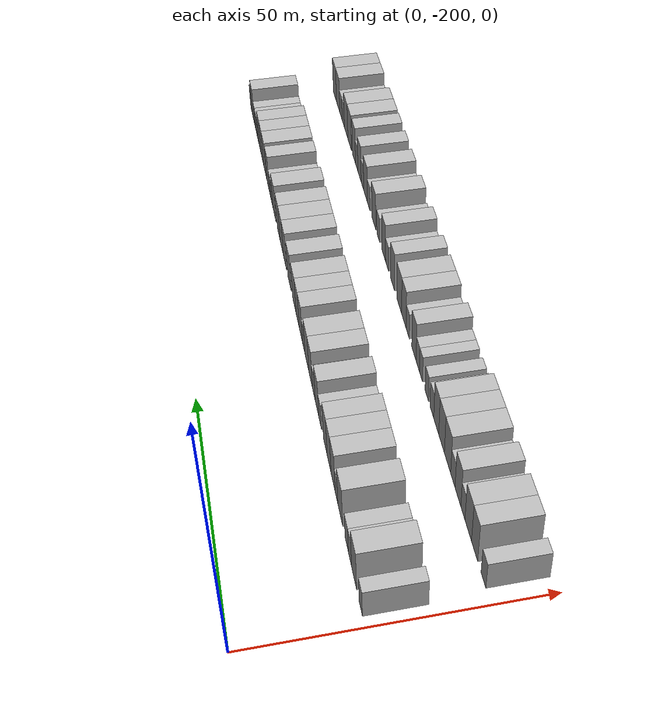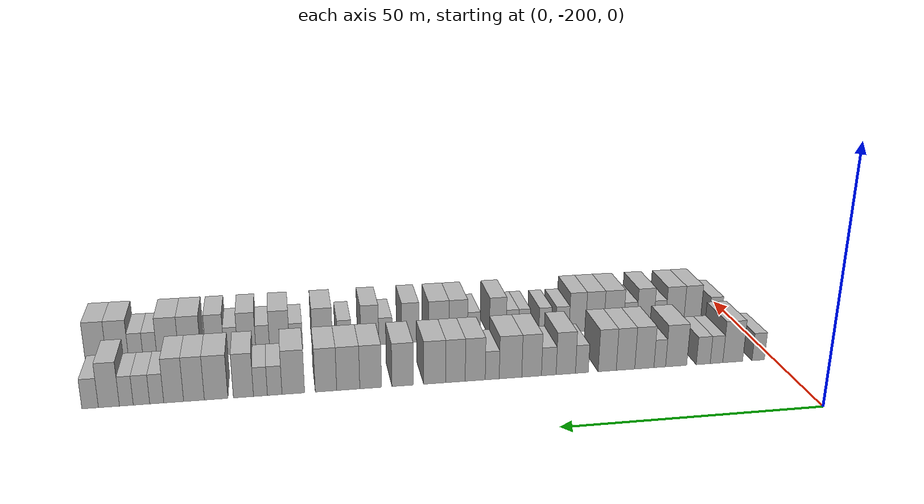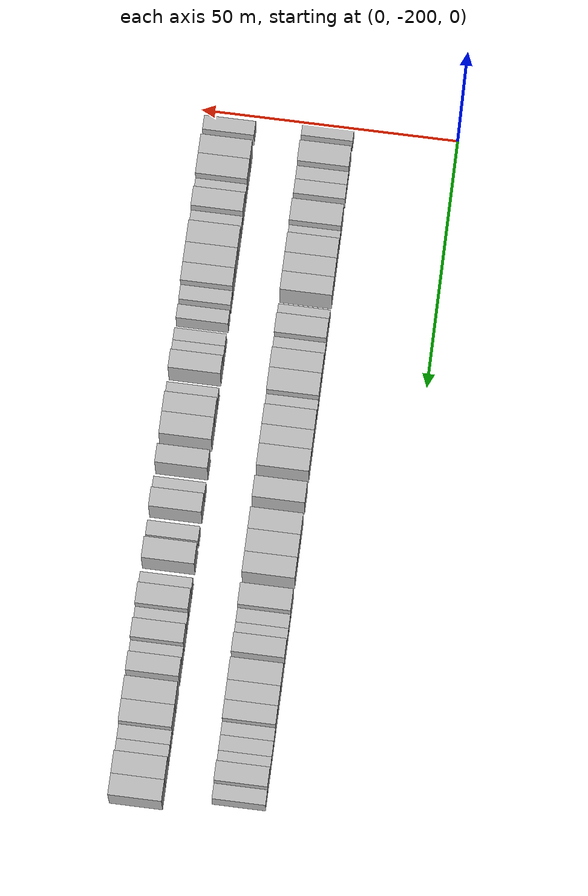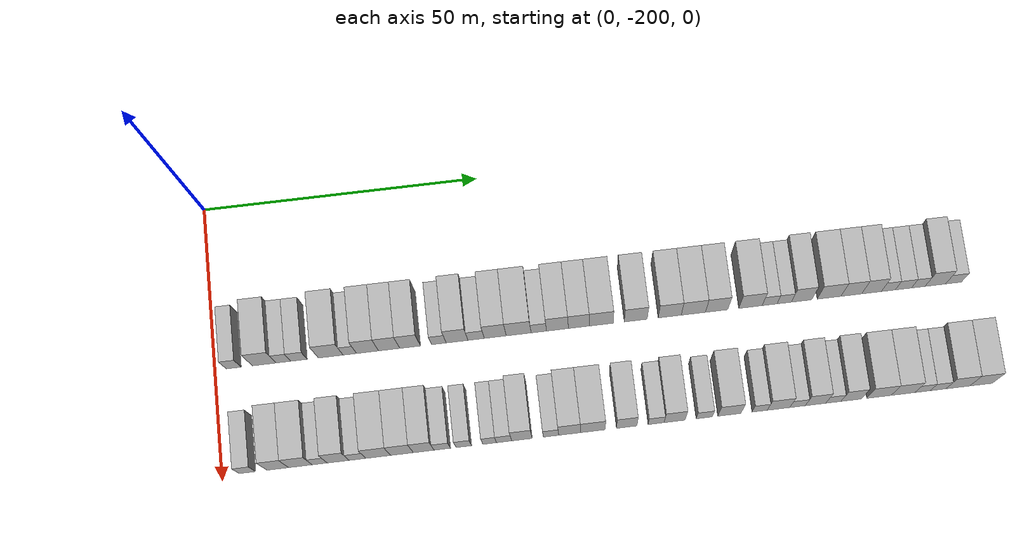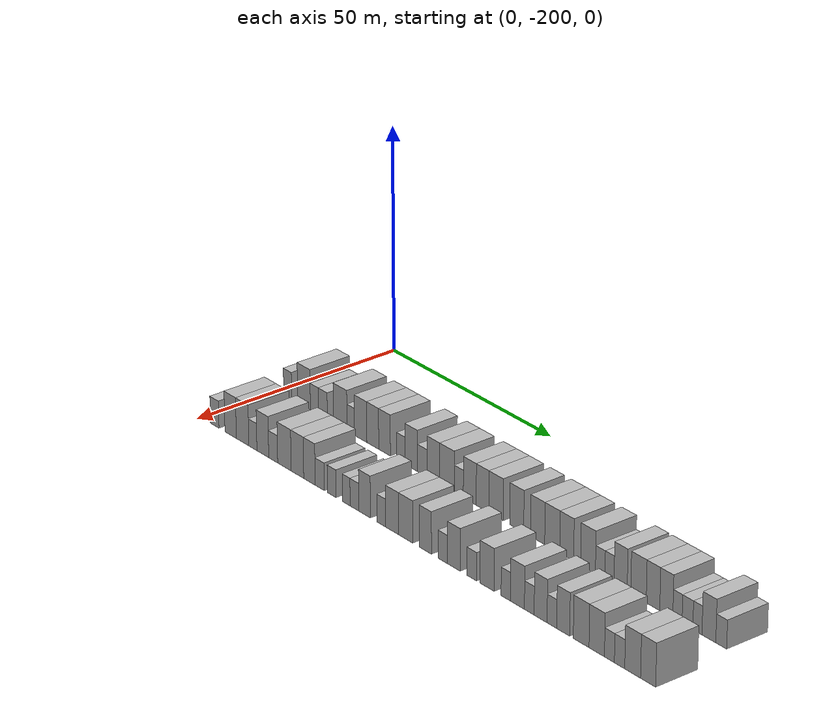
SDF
<sdf version="1.6">
 <world name="default">
  <model name="building_1">
   <static>1</static>
   <pose>25.0000 -196.6738 0 0.000000 0.000000 0.000000</pose>
   <link name="link">
    <pose>0 0 3.00 0 0 0</pose>
    <collision name="collision"><geometry><box><size>10.0000 2.6524 6.0000</size></box></geometry></collision>
    <visual name="visual">
     <cast_shadows>0</cast_shadows>
     <geometry><box><size>10.0000 2.6524 6.0000</size></box></geometry>
     <material>
      <script>
       <uri>model://HANNAS_wall/materials/scripts</uri>
       <uri>model://HANNAS_wall/materials/textures</uri>
       <name>vrc/HANNAS_wall</name>
      </script>
     </material>
    </visual>
   </link>
  </model>
  <model name="building_2">
   <static>1</static>
   <pose>25.0000 -191.2391 0 0.000000 0.000000 0.000000</pose>
   <link name="link">
    <pose>0 0 4.50 0 0 0</pose>
    <collision name="collision"><geometry><box><size>10.0000 4.2170 9.0000</size></box></geometry></collision>
    <visual name="visual">
     <cast_shadows>0</cast_shadows>
     <geometry><box><size>10.0000 4.2170 9.0000</size></box></geometry>
     <material>
      <script>
       <uri>model://HANNAS_wall/materials/scripts</uri>
       <uri>model://HANNAS_wall/materials/textures</uri>
       <name>vrc/HANNAS_wall</name>
      </script>
     </material>
    </visual>
   </link>
  </model>
  <model name="building_3">
   <static>1</static>
   <pose>25.0000 -187.8064 0 0.000000 0.000000 0.000000</pose>
   <link name="link">
    <pose>0 0 3.00 0 0 0</pose>
    <collision name="collision"><geometry><box><size>10.0000 2.6485 6.0000</size></box></geometry></collision>
    <visual name="visual">
     <cast_shadows>0</cast_shadows>
     <geometry><box><size>10.0000 2.6485 6.0000</size></box></geometry>
     <material>
      <script>
       <uri>model://HANNAS_wall/materials/scripts</uri>
       <uri>model://HANNAS_wall/materials/textures</uri>
       <name>vrc/HANNAS_wall</name>
      </script>
     </material>
    </visual>
   </link>
  </model>
  <model name="building_4">
   <static>1</static>
   <pose>25.0000 -185.0159 0 0.000000 0.000000 0.000000</pose>
   <link name="link">
    <pose>0 0 3.00 0 0 0</pose>
    <collision name="collision"><geometry><box><size>10.0000 2.9325 6.0000</size></box></geometry></collision>
    <visual name="visual">
     <cast_shadows>0</cast_shadows>
     <geometry><box><size>10.0000 2.9325 6.0000</size></box></geometry>
     <material>
      <script>
       <uri>model://HANNAS_wall/materials/scripts</uri>
       <uri>model://HANNAS_wall/materials/textures</uri>
       <name>vrc/HANNAS_wall</name>
      </script>
     </material>
    </visual>
   </link>
  </model>
  <model name="building_5">
   <static>1</static>
   <pose>25.0000 -179.3387 0 0.000000 0.000000 0.000000</pose>
   <link name="link">
    <pose>0 0 4.50 0 0 0</pose>
    <collision name="collision"><geometry><box><size>10.0000 4.4220 9.0000</size></box></geometry></collision>
    <visual name="visual">
     <cast_shadows>0</cast_shadows>
     <geometry><box><size>10.0000 4.4220 9.0000</size></box></geometry>
     <material>
      <script>
       <uri>model://HANNAS_wall/materials/scripts</uri>
       <uri>model://HANNAS_wall/materials/textures</uri>
       <name>vrc/HANNAS_wall</name>
      </script>
     </material>
    </visual>
   </link>
  </model>
  <model name="building_6">
   <static>1</static>
   <pose>25.0000 -175.9205 0 0.000000 0.000000 0.000000</pose>
   <link name="link">
    <pose>0 0 3.00 0 0 0</pose>
    <collision name="collision"><geometry><box><size>10.0000 2.4143 6.0000</size></box></geometry></collision>
    <visual name="visual">
     <cast_shadows>0</cast_shadows>
     <geometry><box><size>10.0000 2.4143 6.0000</size></box></geometry>
     <material>
      <script>
       <uri>model://HANNAS_wall/materials/scripts</uri>
       <uri>model://HANNAS_wall/materials/textures</uri>
       <name>vrc/HANNAS_wall</name>
      </script>
     </material>
    </visual>
   </link>
  </model>
  <model name="building_7">
   <static>1</static>
   <pose>25.0000 -172.7269 0 0.000000 0.000000 0.000000</pose>
   <link name="link">
    <pose>0 0 4.50 0 0 0</pose>
    <collision name="collision"><geometry><box><size>10.0000 3.9730 9.0000</size></box></geometry></collision>
    <visual name="visual">
     <cast_shadows>0</cast_shadows>
     <geometry><box><size>10.0000 3.9730 9.0000</size></box></geometry>
     <material>
      <script>
       <uri>model://HANNAS_wall/materials/scripts</uri>
       <uri>model://HANNAS_wall/materials/textures</uri>
       <name>vrc/HANNAS_wall</name>
      </script>
     </material>
    </visual>
   </link>
  </model>
  <model name="building_8">
   <static>1</static>
   <pose>25.0000 -168.8402 0 0.000000 0.000000 0.000000</pose>
   <link name="link">
    <pose>0 0 4.50 0 0 0</pose>
    <collision name="collision"><geometry><box><size>10.0000 3.8005 9.0000</size></box></geometry></collision>
    <visual name="visual">
     <cast_shadows>0</cast_shadows>
     <geometry><box><size>10.0000 3.8005 9.0000</size></box></geometry>
     <material>
      <script>
       <uri>model://HANNAS_wall/materials/scripts</uri>
       <uri>model://HANNAS_wall/materials/textures</uri>
       <name>vrc/HANNAS_wall</name>
      </script>
     </material>
    </visual>
   </link>
  </model>
  <model name="building_9">
   <static>1</static>
   <pose>25.0000 -165.0869 0 0.000000 0.000000 0.000000</pose>
   <link name="link">
    <pose>0 0 4.50 0 0 0</pose>
    <collision name="collision"><geometry><box><size>10.0000 3.7061 9.0000</size></box></geometry></collision>
    <visual name="visual">
     <cast_shadows>0</cast_shadows>
     <geometry><box><size>10.0000 3.7061 9.0000</size></box></geometry>
     <material>
      <script>
       <uri>model://HANNAS_wall/materials/scripts</uri>
       <uri>model://HANNAS_wall/materials/textures</uri>
       <name>vrc/HANNAS_wall</name>
      </script>
     </material>
    </visual>
   </link>
  </model>
  <model name="building_10">
   <static>1</static>
   <pose>25.0000 -159.9245 0 0.000000 0.000000 0.000000</pose>
   <link name="link">
    <pose>0 0 3.00 0 0 0</pose>
    <collision name="collision"><geometry><box><size>10.0000 2.6185 6.0000</size></box></geometry></collision>
    <visual name="visual">
     <cast_shadows>0</cast_shadows>
     <geometry><box><size>10.0000 2.6185 6.0000</size></box></geometry>
     <material>
      <script>
       <uri>model://HANNAS_wall/materials/scripts</uri>
       <uri>model://HANNAS_wall/materials/textures</uri>
       <name>vrc/HANNAS_wall</name>
      </script>
     </material>
    </visual>
   </link>
  </model>
  <model name="building_11">
   <static>1</static>
   <pose>25.0000 -156.6583 0 0.000000 0.000000 0.000000</pose>
   <link name="link">
    <pose>0 0 4.50 0 0 0</pose>
    <collision name="collision"><geometry><box><size>10.0000 3.9140 9.0000</size></box></geometry></collision>
    <visual name="visual">
     <cast_shadows>0</cast_shadows>
     <geometry><box><size>10.0000 3.9140 9.0000</size></box></geometry>
     <material>
      <script>
       <uri>model://HANNAS_wall/materials/scripts</uri>
       <uri>model://HANNAS_wall/materials/textures</uri>
       <name>vrc/HANNAS_wall</name>
      </script>
     </material>
    </visual>
   </link>
  </model>
  <model name="building_12">
   <static>1</static>
   <pose>25.0000 -153.2270 0 0.000000 0.000000 0.000000</pose>
   <link name="link">
    <pose>0 0 3.00 0 0 0</pose>
    <collision name="collision"><geometry><box><size>10.0000 2.9485 6.0000</size></box></geometry></collision>
    <visual name="visual">
     <cast_shadows>0</cast_shadows>
     <geometry><box><size>10.0000 2.9485 6.0000</size></box></geometry>
     <material>
      <script>
       <uri>model://HANNAS_wall/materials/scripts</uri>
       <uri>model://HANNAS_wall/materials/textures</uri>
       <name>vrc/HANNAS_wall</name>
      </script>
     </material>
    </visual>
   </link>
  </model>
  <model name="building_13">
   <static>1</static>
   <pose>25.0000 -149.7778 0 0.000000 0.000000 0.000000</pose>
   <link name="link">
    <pose>0 0 4.50 0 0 0</pose>
    <collision name="collision"><geometry><box><size>10.0000 3.9499 9.0000</size></box></geometry></collision>
    <visual name="visual">
     <cast_shadows>0</cast_shadows>
     <geometry><box><size>10.0000 3.9499 9.0000</size></box></geometry>
     <material>
      <script>
       <uri>model://HANNAS_wall/materials/scripts</uri>
       <uri>model://HANNAS_wall/materials/textures</uri>
       <name>vrc/HANNAS_wall</name>
      </script>
     </material>
    </visual>
   </link>
  </model>
  <model name="building_14">
   <static>1</static>
   <pose>25.0000 -145.5605 0 0.000000 0.000000 0.000000</pose>
   <link name="link">
    <pose>0 0 4.50 0 0 0</pose>
    <collision name="collision"><geometry><box><size>10.0000 4.4847 9.0000</size></box></geometry></collision>
    <visual name="visual">
     <cast_shadows>0</cast_shadows>
     <geometry><box><size>10.0000 4.4847 9.0000</size></box></geometry>
     <material>
      <script>
       <uri>model://HANNAS_wall/materials/scripts</uri>
       <uri>model://HANNAS_wall/materials/textures</uri>
       <name>vrc/HANNAS_wall</name>
      </script>
     </material>
    </visual>
   </link>
  </model>
  <model name="building_15">
   <static>1</static>
   <pose>25.0000 -141.9328 0 0.000000 0.000000 0.000000</pose>
   <link name="link">
    <pose>0 0 3.00 0 0 0</pose>
    <collision name="collision"><geometry><box><size>10.0000 2.7708 6.0000</size></box></geometry></collision>
    <visual name="visual">
     <cast_shadows>0</cast_shadows>
     <geometry><box><size>10.0000 2.7708 6.0000</size></box></geometry>
     <material>
      <script>
       <uri>model://HANNAS_wall/materials/scripts</uri>
       <uri>model://HANNAS_wall/materials/textures</uri>
       <name>vrc/HANNAS_wall</name>
      </script>
     </material>
    </visual>
   </link>
  </model>
  <model name="building_16">
   <static>1</static>
   <pose>25.0000 -138.5740 0 0.000000 0.000000 0.000000</pose>
   <link name="link">
    <pose>0 0 4.50 0 0 0</pose>
    <collision name="collision"><geometry><box><size>10.0000 3.9467 9.0000</size></box></geometry></collision>
    <visual name="visual">
     <cast_shadows>0</cast_shadows>
     <geometry><box><size>10.0000 3.9467 9.0000</size></box></geometry>
     <material>
      <script>
       <uri>model://HANNAS_wall/materials/scripts</uri>
       <uri>model://HANNAS_wall/materials/textures</uri>
       <name>vrc/HANNAS_wall</name>
      </script>
     </material>
    </visual>
   </link>
  </model>
  <model name="building_17">
   <static>1</static>
   <pose>25.0000 -134.7032 0 0.000000 0.000000 0.000000</pose>
   <link name="link">
    <pose>0 0 4.50 0 0 0</pose>
    <collision name="collision"><geometry><box><size>10.0000 3.7951 9.0000</size></box></geometry></collision>
    <visual name="visual">
     <cast_shadows>0</cast_shadows>
     <geometry><box><size>10.0000 3.7951 9.0000</size></box></geometry>
     <material>
      <script>
       <uri>model://HANNAS_wall/materials/scripts</uri>
       <uri>model://HANNAS_wall/materials/textures</uri>
       <name>vrc/HANNAS_wall</name>
      </script>
     </material>
    </visual>
   </link>
  </model>
  <model name="building_18">
   <static>1</static>
   <pose>25.0000 -130.6497 0 0.000000 0.000000 0.000000</pose>
   <link name="link">
    <pose>0 0 4.50 0 0 0</pose>
    <collision name="collision"><geometry><box><size>10.0000 4.3119 9.0000</size></box></geometry></collision>
    <visual name="visual">
     <cast_shadows>0</cast_shadows>
     <geometry><box><size>10.0000 4.3119 9.0000</size></box></geometry>
     <material>
      <script>
       <uri>model://HANNAS_wall/materials/scripts</uri>
       <uri>model://HANNAS_wall/materials/textures</uri>
       <name>vrc/HANNAS_wall</name>
      </script>
     </material>
    </visual>
   </link>
  </model>
  <model name="building_19">
   <static>1</static>
   <pose>25.0000 -124.4272 0 0.000000 0.000000 0.000000</pose>
   <link name="link">
    <pose>0 0 4.50 0 0 0</pose>
    <collision name="collision"><geometry><box><size>10.0000 4.1331 9.0000</size></box></geometry></collision>
    <visual name="visual">
     <cast_shadows>0</cast_shadows>
     <geometry><box><size>10.0000 4.1331 9.0000</size></box></geometry>
     <material>
      <script>
       <uri>model://HANNAS_wall/materials/scripts</uri>
       <uri>model://HANNAS_wall/materials/textures</uri>
       <name>vrc/HANNAS_wall</name>
      </script>
     </material>
    </visual>
   </link>
  </model>
  <model name="building_20">
   <static>1</static>
   <pose>25.0000 -118.2726 0 0.000000 0.000000 0.000000</pose>
   <link name="link">
    <pose>0 0 4.50 0 0 0</pose>
    <collision name="collision"><geometry><box><size>10.0000 4.1760 9.0000</size></box></geometry></collision>
    <visual name="visual">
     <cast_shadows>0</cast_shadows>
     <geometry><box><size>10.0000 4.1760 9.0000</size></box></geometry>
     <material>
      <script>
       <uri>model://HANNAS_wall/materials/scripts</uri>
       <uri>model://HANNAS_wall/materials/textures</uri>
       <name>vrc/HANNAS_wall</name>
      </script>
     </material>
    </visual>
   </link>
  </model>
  <model name="building_21">
   <static>1</static>
   <pose>25.0000 -113.9868 0 0.000000 0.000000 0.000000</pose>
   <link name="link">
    <pose>0 0 4.50 0 0 0</pose>
    <collision name="collision"><geometry><box><size>10.0000 4.3957 9.0000</size></box></geometry></collision>
    <visual name="visual">
     <cast_shadows>0</cast_shadows>
     <geometry><box><size>10.0000 4.3957 9.0000</size></box></geometry>
     <material>
      <script>
       <uri>model://HANNAS_wall/materials/scripts</uri>
       <uri>model://HANNAS_wall/materials/textures</uri>
       <name>vrc/HANNAS_wall</name>
      </script>
     </material>
    </visual>
   </link>
  </model>
  <model name="building_22">
   <static>1</static>
   <pose>25.0000 -109.7643 0 0.000000 0.000000 0.000000</pose>
   <link name="link">
    <pose>0 0 4.50 0 0 0</pose>
    <collision name="collision"><geometry><box><size>10.0000 4.0492 9.0000</size></box></geometry></collision>
    <visual name="visual">
     <cast_shadows>0</cast_shadows>
     <geometry><box><size>10.0000 4.0492 9.0000</size></box></geometry>
     <material>
      <script>
       <uri>model://HANNAS_wall/materials/scripts</uri>
       <uri>model://HANNAS_wall/materials/textures</uri>
       <name>vrc/HANNAS_wall</name>
      </script>
     </material>
    </visual>
   </link>
  </model>
  <model name="building_23">
   <static>1</static>
   <pose>25.0000 -103.6163 0 0.000000 0.000000 0.000000</pose>
   <link name="link">
    <pose>0 0 4.50 0 0 0</pose>
    <collision name="collision"><geometry><box><size>10.0000 4.2467 9.0000</size></box></geometry></collision>
    <visual name="visual">
     <cast_shadows>0</cast_shadows>
     <geometry><box><size>10.0000 4.2467 9.0000</size></box></geometry>
     <material>
      <script>
       <uri>model://HANNAS_wall/materials/scripts</uri>
       <uri>model://HANNAS_wall/materials/textures</uri>
       <name>vrc/HANNAS_wall</name>
      </script>
     </material>
    </visual>
   </link>
  </model>
  <model name="building_24">
   <static>1</static>
   <pose>25.0000 -100.1318 0 0.000000 0.000000 0.000000</pose>
   <link name="link">
    <pose>0 0 3.00 0 0 0</pose>
    <collision name="collision"><geometry><box><size>10.0000 2.7223 6.0000</size></box></geometry></collision>
    <visual name="visual">
     <cast_shadows>0</cast_shadows>
     <geometry><box><size>10.0000 2.7223 6.0000</size></box></geometry>
     <material>
      <script>
       <uri>model://HANNAS_wall/materials/scripts</uri>
       <uri>model://HANNAS_wall/materials/textures</uri>
       <name>vrc/HANNAS_wall</name>
      </script>
     </material>
    </visual>
   </link>
  </model>
  <model name="building_25">
   <static>1</static>
   <pose>25.0000 -97.4797 0 0.000000 0.000000 0.000000</pose>
   <link name="link">
    <pose>0 0 3.00 0 0 0</pose>
    <collision name="collision"><geometry><box><size>10.0000 2.5819 6.0000</size></box></geometry></collision>
    <visual name="visual">
     <cast_shadows>0</cast_shadows>
     <geometry><box><size>10.0000 2.5819 6.0000</size></box></geometry>
     <material>
      <script>
       <uri>model://HANNAS_wall/materials/scripts</uri>
       <uri>model://HANNAS_wall/materials/textures</uri>
       <name>vrc/HANNAS_wall</name>
      </script>
     </material>
    </visual>
   </link>
  </model>
  <model name="building_26">
   <static>1</static>
   <pose>25.0000 -94.3275 0 0.000000 0.000000 0.000000</pose>
   <link name="link">
    <pose>0 0 4.50 0 0 0</pose>
    <collision name="collision"><geometry><box><size>10.0000 3.7225 9.0000</size></box></geometry></collision>
    <visual name="visual">
     <cast_shadows>0</cast_shadows>
     <geometry><box><size>10.0000 3.7225 9.0000</size></box></geometry>
     <material>
      <script>
       <uri>model://HANNAS_wall/materials/scripts</uri>
       <uri>model://HANNAS_wall/materials/textures</uri>
       <name>vrc/HANNAS_wall</name>
      </script>
     </material>
    </visual>
   </link>
  </model>
  <model name="building_27">
   <static>1</static>
   <pose>25.0000 -89.3020 0 0.000000 0.000000 0.000000</pose>
   <link name="link">
    <pose>0 0 4.50 0 0 0</pose>
    <collision name="collision"><geometry><box><size>10.0000 4.3286 9.0000</size></box></geometry></collision>
    <visual name="visual">
     <cast_shadows>0</cast_shadows>
     <geometry><box><size>10.0000 4.3286 9.0000</size></box></geometry>
     <material>
      <script>
       <uri>model://HANNAS_wall/materials/scripts</uri>
       <uri>model://HANNAS_wall/materials/textures</uri>
       <name>vrc/HANNAS_wall</name>
      </script>
     </material>
    </visual>
   </link>
  </model>
  <model name="building_28">
   <static>1</static>
   <pose>25.0000 -85.2494 0 0.000000 0.000000 0.000000</pose>
   <link name="link">
    <pose>0 0 4.50 0 0 0</pose>
    <collision name="collision"><geometry><box><size>10.0000 3.7765 9.0000</size></box></geometry></collision>
    <visual name="visual">
     <cast_shadows>0</cast_shadows>
     <geometry><box><size>10.0000 3.7765 9.0000</size></box></geometry>
     <material>
      <script>
       <uri>model://HANNAS_wall/materials/scripts</uri>
       <uri>model://HANNAS_wall/materials/textures</uri>
       <name>vrc/HANNAS_wall</name>
      </script>
     </material>
    </visual>
   </link>
  </model>
  <model name="building_29">
   <static>1</static>
   <pose>25.0000 -81.5595 0 0.000000 0.000000 0.000000</pose>
   <link name="link">
    <pose>0 0 4.50 0 0 0</pose>
    <collision name="collision"><geometry><box><size>10.0000 3.6033 9.0000</size></box></geometry></collision>
    <visual name="visual">
     <cast_shadows>0</cast_shadows>
     <geometry><box><size>10.0000 3.6033 9.0000</size></box></geometry>
     <material>
      <script>
       <uri>model://HANNAS_wall/materials/scripts</uri>
       <uri>model://HANNAS_wall/materials/textures</uri>
       <name>vrc/HANNAS_wall</name>
      </script>
     </material>
    </visual>
   </link>
  </model>
  <model name="building_30">
   <static>1</static>
   <pose>25.0000 -78.4887 0 0.000000 0.000000 0.000000</pose>
   <link name="link">
    <pose>0 0 3.00 0 0 0</pose>
    <collision name="collision"><geometry><box><size>10.0000 2.5384 6.0000</size></box></geometry></collision>
    <visual name="visual">
     <cast_shadows>0</cast_shadows>
     <geometry><box><size>10.0000 2.5384 6.0000</size></box></geometry>
     <material>
      <script>
       <uri>model://HANNAS_wall/materials/scripts</uri>
       <uri>model://HANNAS_wall/materials/textures</uri>
       <name>vrc/HANNAS_wall</name>
      </script>
     </material>
    </visual>
   </link>
  </model>
  <model name="building_31">
   <static>1</static>
   <pose>25.0000 -75.7399 0 0.000000 0.000000 0.000000</pose>
   <link name="link">
    <pose>0 0 3.00 0 0 0</pose>
    <collision name="collision"><geometry><box><size>10.0000 2.9591 6.0000</size></box></geometry></collision>
    <visual name="visual">
     <cast_shadows>0</cast_shadows>
     <geometry><box><size>10.0000 2.9591 6.0000</size></box></geometry>
     <material>
      <script>
       <uri>model://HANNAS_wall/materials/scripts</uri>
       <uri>model://HANNAS_wall/materials/textures</uri>
       <name>vrc/HANNAS_wall</name>
      </script>
     </material>
    </visual>
   </link>
  </model>
  <model name="building_32">
   <static>1</static>
   <pose>25.0000 -73.0192 0 0.000000 0.000000 0.000000</pose>
   <link name="link">
    <pose>0 0 3.00 0 0 0</pose>
    <collision name="collision"><geometry><box><size>10.0000 2.4824 6.0000</size></box></geometry></collision>
    <visual name="visual">
     <cast_shadows>0</cast_shadows>
     <geometry><box><size>10.0000 2.4824 6.0000</size></box></geometry>
     <material>
      <script>
       <uri>model://HANNAS_wall/materials/scripts</uri>
       <uri>model://HANNAS_wall/materials/textures</uri>
       <name>vrc/HANNAS_wall</name>
      </script>
     </material>
    </visual>
   </link>
  </model>
  <model name="building_33">
   <static>1</static>
   <pose>25.0000 -69.9044 0 0.000000 0.000000 0.000000</pose>
   <link name="link">
    <pose>0 0 4.50 0 0 0</pose>
    <collision name="collision"><geometry><box><size>10.0000 3.7471 9.0000</size></box></geometry></collision>
    <visual name="visual">
     <cast_shadows>0</cast_shadows>
     <geometry><box><size>10.0000 3.7471 9.0000</size></box></geometry>
     <material>
      <script>
       <uri>model://HANNAS_wall/materials/scripts</uri>
       <uri>model://HANNAS_wall/materials/textures</uri>
       <name>vrc/HANNAS_wall</name>
      </script>
     </material>
    </visual>
   </link>
  </model>
  <model name="building_34">
   <static>1</static>
   <pose>25.0000 -66.5628 0 0.000000 0.000000 0.000000</pose>
   <link name="link">
    <pose>0 0 3.00 0 0 0</pose>
    <collision name="collision"><geometry><box><size>10.0000 2.9362 6.0000</size></box></geometry></collision>
    <visual name="visual">
     <cast_shadows>0</cast_shadows>
     <geometry><box><size>10.0000 2.9362 6.0000</size></box></geometry>
     <material>
      <script>
       <uri>model://HANNAS_wall/materials/scripts</uri>
       <uri>model://HANNAS_wall/materials/textures</uri>
       <name>vrc/HANNAS_wall</name>
      </script>
     </material>
    </visual>
   </link>
  </model>
  <model name="building_104">
   <static>1</static>
   <pose>44.0000 -195.5657 0 0.000000 0.000000 0.000000</pose>
   <link name="link">
    <pose>0 0 3.00 0 0 0</pose>
    <collision name="collision"><geometry><box><size>10.0000 2.8685 6.0000</size></box></geometry></collision>
    <visual name="visual">
     <cast_shadows>0</cast_shadows>
     <geometry><box><size>10.0000 2.8685 6.0000</size></box></geometry>
     <material>
      <script>
       <uri>model://HANNAS_wall/materials/scripts</uri>
       <uri>model://HANNAS_wall/materials/textures</uri>
       <name>vrc/HANNAS_wall</name>
      </script>
     </material>
    </visual>
   </link>
  </model>
  <model name="building_105">
   <static>1</static>
   <pose>44.0000 -190.2236 0 0.000000 0.000000 0.000000</pose>
   <link name="link">
    <pose>0 0 4.50 0 0 0</pose>
    <collision name="collision"><geometry><box><size>10.0000 3.8157 9.0000</size></box></geometry></collision>
    <visual name="visual">
     <cast_shadows>0</cast_shadows>
     <geometry><box><size>10.0000 3.8157 9.0000</size></box></geometry>
     <material>
      <script>
       <uri>model://HANNAS_wall/materials/scripts</uri>
       <uri>model://HANNAS_wall/materials/textures</uri>
       <name>vrc/HANNAS_wall</name>
      </script>
     </material>
    </visual>
   </link>
  </model>
  <model name="building_106">
   <static>1</static>
   <pose>44.0000 -186.2428 0 0.000000 0.000000 0.000000</pose>
   <link name="link">
    <pose>0 0 4.50 0 0 0</pose>
    <collision name="collision"><geometry><box><size>10.0000 4.1459 9.0000</size></box></geometry></collision>
    <visual name="visual">
     <cast_shadows>0</cast_shadows>
     <geometry><box><size>10.0000 4.1459 9.0000</size></box></geometry>
     <material>
      <script>
       <uri>model://HANNAS_wall/materials/scripts</uri>
       <uri>model://HANNAS_wall/materials/textures</uri>
       <name>vrc/HANNAS_wall</name>
      </script>
     </material>
    </visual>
   </link>
  </model>
  <model name="building_107">
   <static>1</static>
   <pose>44.0000 -182.8457 0 0.000000 0.000000 0.000000</pose>
   <link name="link">
    <pose>0 0 3.00 0 0 0</pose>
    <collision name="collision"><geometry><box><size>10.0000 2.6484 6.0000</size></box></geometry></collision>
    <visual name="visual">
     <cast_shadows>0</cast_shadows>
     <geometry><box><size>10.0000 2.6484 6.0000</size></box></geometry>
     <material>
      <script>
       <uri>model://HANNAS_wall/materials/scripts</uri>
       <uri>model://HANNAS_wall/materials/textures</uri>
       <name>vrc/HANNAS_wall</name>
      </script>
     </material>
    </visual>
   </link>
  </model>
  <model name="building_108">
   <static>1</static>
   <pose>44.0000 -179.5871 0 0.000000 0.000000 0.000000</pose>
   <link name="link">
    <pose>0 0 4.50 0 0 0</pose>
    <collision name="collision"><geometry><box><size>10.0000 3.8688 9.0000</size></box></geometry></collision>
    <visual name="visual">
     <cast_shadows>0</cast_shadows>
     <geometry><box><size>10.0000 3.8688 9.0000</size></box></geometry>
     <material>
      <script>
       <uri>model://HANNAS_wall/materials/scripts</uri>
       <uri>model://HANNAS_wall/materials/textures</uri>
       <name>vrc/HANNAS_wall</name>
      </script>
     </material>
    </visual>
   </link>
  </model>
  <model name="building_109">
   <static>1</static>
   <pose>44.0000 -176.1914 0 0.000000 0.000000 0.000000</pose>
   <link name="link">
    <pose>0 0 3.00 0 0 0</pose>
    <collision name="collision"><geometry><box><size>10.0000 2.9225 6.0000</size></box></geometry></collision>
    <visual name="visual">
     <cast_shadows>0</cast_shadows>
     <geometry><box><size>10.0000 2.9225 6.0000</size></box></geometry>
     <material>
      <script>
       <uri>model://HANNAS_wall/materials/scripts</uri>
       <uri>model://HANNAS_wall/materials/textures</uri>
       <name>vrc/HANNAS_wall</name>
      </script>
     </material>
    </visual>
   </link>
  </model>
  <model name="building_110">
   <static>1</static>
   <pose>44.0000 -172.5340 0 0.000000 0.000000 0.000000</pose>
   <link name="link">
    <pose>0 0 4.50 0 0 0</pose>
    <collision name="collision"><geometry><box><size>10.0000 4.3924 9.0000</size></box></geometry></collision>
    <visual name="visual">
     <cast_shadows>0</cast_shadows>
     <geometry><box><size>10.0000 4.3924 9.0000</size></box></geometry>
     <material>
      <script>
       <uri>model://HANNAS_wall/materials/scripts</uri>
       <uri>model://HANNAS_wall/materials/textures</uri>
       <name>vrc/HANNAS_wall</name>
      </script>
     </material>
    </visual>
   </link>
  </model>
  <model name="building_111">
   <static>1</static>
   <pose>44.0000 -168.3188 0 0.000000 0.000000 0.000000</pose>
   <link name="link">
    <pose>0 0 4.50 0 0 0</pose>
    <collision name="collision"><geometry><box><size>10.0000 4.0380 9.0000</size></box></geometry></collision>
    <visual name="visual">
     <cast_shadows>0</cast_shadows>
     <geometry><box><size>10.0000 4.0380 9.0000</size></box></geometry>
     <material>
      <script>
       <uri>model://HANNAS_wall/materials/scripts</uri>
       <uri>model://HANNAS_wall/materials/textures</uri>
       <name>vrc/HANNAS_wall</name>
      </script>
     </material>
    </visual>
   </link>
  </model>
  <model name="building_112">
   <static>1</static>
   <pose>44.0000 -164.4657 0 0.000000 0.000000 0.000000</pose>
   <link name="link">
    <pose>0 0 4.50 0 0 0</pose>
    <collision name="collision"><geometry><box><size>10.0000 3.6681 9.0000</size></box></geometry></collision>
    <visual name="visual">
     <cast_shadows>0</cast_shadows>
     <geometry><box><size>10.0000 3.6681 9.0000</size></box></geometry>
     <material>
      <script>
       <uri>model://HANNAS_wall/materials/scripts</uri>
       <uri>model://HANNAS_wall/materials/textures</uri>
       <name>vrc/HANNAS_wall</name>
      </script>
     </material>
    </visual>
   </link>
  </model>
  <model name="building_113">
   <static>1</static>
   <pose>44.0000 -161.1796 0 0.000000 0.000000 0.000000</pose>
   <link name="link">
    <pose>0 0 3.00 0 0 0</pose>
    <collision name="collision"><geometry><box><size>10.0000 2.9042 6.0000</size></box></geometry></collision>
    <visual name="visual">
     <cast_shadows>0</cast_shadows>
     <geometry><box><size>10.0000 2.9042 6.0000</size></box></geometry>
     <material>
      <script>
       <uri>model://HANNAS_wall/materials/scripts</uri>
       <uri>model://HANNAS_wall/materials/textures</uri>
       <name>vrc/HANNAS_wall</name>
      </script>
     </material>
    </visual>
   </link>
  </model>
  <model name="building_114">
   <static>1</static>
   <pose>44.0000 -157.3653 0 0.000000 0.000000 0.000000</pose>
   <link name="link">
    <pose>0 0 3.00 0 0 0</pose>
    <collision name="collision"><geometry><box><size>10.0000 2.7243 6.0000</size></box></geometry></collision>
    <visual name="visual">
     <cast_shadows>0</cast_shadows>
     <geometry><box><size>10.0000 2.7243 6.0000</size></box></geometry>
     <material>
      <script>
       <uri>model://HANNAS_wall/materials/scripts</uri>
       <uri>model://HANNAS_wall/materials/textures</uri>
       <name>vrc/HANNAS_wall</name>
      </script>
     </material>
    </visual>
   </link>
  </model>
  <model name="building_115">
   <static>1</static>
   <pose>44.0000 -152.7939 0 0.000000 0.000000 0.000000</pose>
   <link name="link">
    <pose>0 0 3.00 0 0 0</pose>
    <collision name="collision"><geometry><box><size>10.0000 2.4185 6.0000</size></box></geometry></collision>
    <visual name="visual">
     <cast_shadows>0</cast_shadows>
     <geometry><box><size>10.0000 2.4185 6.0000</size></box></geometry>
     <material>
      <script>
       <uri>model://HANNAS_wall/materials/scripts</uri>
       <uri>model://HANNAS_wall/materials/textures</uri>
       <name>vrc/HANNAS_wall</name>
      </script>
     </material>
    </visual>
   </link>
  </model>
  <model name="building_116">
   <static>1</static>
   <pose>44.0000 -150.2296 0 0.000000 0.000000 0.000000</pose>
   <link name="link">
    <pose>0 0 3.00 0 0 0</pose>
    <collision name="collision"><geometry><box><size>10.0000 2.7101 6.0000</size></box></geometry></collision>
    <visual name="visual">
     <cast_shadows>0</cast_shadows>
     <geometry><box><size>10.0000 2.7101 6.0000</size></box></geometry>
     <material>
      <script>
       <uri>model://HANNAS_wall/materials/scripts</uri>
       <uri>model://HANNAS_wall/materials/textures</uri>
       <name>vrc/HANNAS_wall</name>
      </script>
     </material>
    </visual>
   </link>
  </model>
  <model name="building_117">
   <static>1</static>
   <pose>44.0000 -147.0651 0 0.000000 0.000000 0.000000</pose>
   <link name="link">
    <pose>0 0 4.50 0 0 0</pose>
    <collision name="collision"><geometry><box><size>10.0000 3.6189 9.0000</size></box></geometry></collision>
    <visual name="visual">
     <cast_shadows>0</cast_shadows>
     <geometry><box><size>10.0000 3.6189 9.0000</size></box></geometry>
     <material>
      <script>
       <uri>model://HANNAS_wall/materials/scripts</uri>
       <uri>model://HANNAS_wall/materials/textures</uri>
       <name>vrc/HANNAS_wall</name>
      </script>
     </material>
    </visual>
   </link>
  </model>
  <model name="building_118">
   <static>1</static>
   <pose>44.0000 -141.9018 0 0.000000 0.000000 0.000000</pose>
   <link name="link">
    <pose>0 0 3.00 0 0 0</pose>
    <collision name="collision"><geometry><box><size>10.0000 2.7076 6.0000</size></box></geometry></collision>
    <visual name="visual">
     <cast_shadows>0</cast_shadows>
     <geometry><box><size>10.0000 2.7076 6.0000</size></box></geometry>
     <material>
      <script>
       <uri>model://HANNAS_wall/materials/scripts</uri>
       <uri>model://HANNAS_wall/materials/textures</uri>
       <name>vrc/HANNAS_wall</name>
      </script>
     </material>
    </visual>
   </link>
  </model>
  <model name="building_119">
   <static>1</static>
   <pose>44.0000 -138.5949 0 0.000000 0.000000 0.000000</pose>
   <link name="link">
    <pose>0 0 4.50 0 0 0</pose>
    <collision name="collision"><geometry><box><size>10.0000 3.9060 9.0000</size></box></geometry></collision>
    <visual name="visual">
     <cast_shadows>0</cast_shadows>
     <geometry><box><size>10.0000 3.9060 9.0000</size></box></geometry>
     <material>
      <script>
       <uri>model://HANNAS_wall/materials/scripts</uri>
       <uri>model://HANNAS_wall/materials/textures</uri>
       <name>vrc/HANNAS_wall</name>
      </script>
     </material>
    </visual>
   </link>
  </model>
  <model name="building_120">
   <static>1</static>
   <pose>44.0000 -134.4544 0 0.000000 0.000000 0.000000</pose>
   <link name="link">
    <pose>0 0 4.50 0 0 0</pose>
    <collision name="collision"><geometry><box><size>10.0000 4.3750 9.0000</size></box></geometry></collision>
    <visual name="visual">
     <cast_shadows>0</cast_shadows>
     <geometry><box><size>10.0000 4.3750 9.0000</size></box></geometry>
     <material>
      <script>
       <uri>model://HANNAS_wall/materials/scripts</uri>
       <uri>model://HANNAS_wall/materials/textures</uri>
       <name>vrc/HANNAS_wall</name>
      </script>
     </material>
    </visual>
   </link>
  </model>
  <model name="building_121">
   <static>1</static>
   <pose>44.0000 -128.4509 0 0.000000 0.000000 0.000000</pose>
   <link name="link">
    <pose>0 0 4.50 0 0 0</pose>
    <collision name="collision"><geometry><box><size>10.0000 3.6321 9.0000</size></box></geometry></collision>
    <visual name="visual">
     <cast_shadows>0</cast_shadows>
     <geometry><box><size>10.0000 3.6321 9.0000</size></box></geometry>
     <material>
      <script>
       <uri>model://HANNAS_wall/materials/scripts</uri>
       <uri>model://HANNAS_wall/materials/textures</uri>
       <name>vrc/HANNAS_wall</name>
      </script>
     </material>
    </visual>
   </link>
  </model>
  <model name="building_122">
   <static>1</static>
   <pose>44.0000 -123.2103 0 0.000000 0.000000 0.000000</pose>
   <link name="link">
    <pose>0 0 3.00 0 0 0</pose>
    <collision name="collision"><geometry><box><size>10.0000 2.8491 6.0000</size></box></geometry></collision>
    <visual name="visual">
     <cast_shadows>0</cast_shadows>
     <geometry><box><size>10.0000 2.8491 6.0000</size></box></geometry>
     <material>
      <script>
       <uri>model://HANNAS_wall/materials/scripts</uri>
       <uri>model://HANNAS_wall/materials/textures</uri>
       <name>vrc/HANNAS_wall</name>
      </script>
     </material>
    </visual>
   </link>
  </model>
  <model name="building_123">
   <static>1</static>
   <pose>44.0000 -119.9262 0 0.000000 0.000000 0.000000</pose>
   <link name="link">
    <pose>0 0 4.50 0 0 0</pose>
    <collision name="collision"><geometry><box><size>10.0000 3.7190 9.0000</size></box></geometry></collision>
    <visual name="visual">
     <cast_shadows>0</cast_shadows>
     <geometry><box><size>10.0000 3.7190 9.0000</size></box></geometry>
     <material>
      <script>
       <uri>model://HANNAS_wall/materials/scripts</uri>
       <uri>model://HANNAS_wall/materials/textures</uri>
       <name>vrc/HANNAS_wall</name>
      </script>
     </material>
    </visual>
   </link>
  </model>
  <model name="building_124">
   <static>1</static>
   <pose>44.0000 -114.6321 0 0.000000 0.000000 0.000000</pose>
   <link name="link">
    <pose>0 0 3.00 0 0 0</pose>
    <collision name="collision"><geometry><box><size>10.0000 2.8691 6.0000</size></box></geometry></collision>
    <visual name="visual">
     <cast_shadows>0</cast_shadows>
     <geometry><box><size>10.0000 2.8691 6.0000</size></box></geometry>
     <material>
      <script>
       <uri>model://HANNAS_wall/materials/scripts</uri>
       <uri>model://HANNAS_wall/materials/textures</uri>
       <name>vrc/HANNAS_wall</name>
      </script>
     </material>
    </visual>
   </link>
  </model>
  <model name="building_125">
   <static>1</static>
   <pose>44.0000 -110.1346 0 0.000000 0.000000 0.000000</pose>
   <link name="link">
    <pose>0 0 4.50 0 0 0</pose>
    <collision name="collision"><geometry><box><size>10.0000 4.1259 9.0000</size></box></geometry></collision>
    <visual name="visual">
     <cast_shadows>0</cast_shadows>
     <geometry><box><size>10.0000 4.1259 9.0000</size></box></geometry>
     <material>
      <script>
       <uri>model://HANNAS_wall/materials/scripts</uri>
       <uri>model://HANNAS_wall/materials/textures</uri>
       <name>vrc/HANNAS_wall</name>
      </script>
     </material>
    </visual>
   </link>
  </model>
  <model name="building_126">
   <static>1</static>
   <pose>44.0000 -104.7179 0 0.000000 0.000000 0.000000</pose>
   <link name="link">
    <pose>0 0 3.00 0 0 0</pose>
    <collision name="collision"><geometry><box><size>10.0000 2.7076 6.0000</size></box></geometry></collision>
    <visual name="visual">
     <cast_shadows>0</cast_shadows>
     <geometry><box><size>10.0000 2.7076 6.0000</size></box></geometry>
     <material>
      <script>
       <uri>model://HANNAS_wall/materials/scripts</uri>
       <uri>model://HANNAS_wall/materials/textures</uri>
       <name>vrc/HANNAS_wall</name>
      </script>
     </material>
    </visual>
   </link>
  </model>
  <model name="building_127">
   <static>1</static>
   <pose>44.0000 -101.3440 0 0.000000 0.000000 0.000000</pose>
   <link name="link">
    <pose>0 0 4.50 0 0 0</pose>
    <collision name="collision"><geometry><box><size>10.0000 4.0403 9.0000</size></box></geometry></collision>
    <visual name="visual">
     <cast_shadows>0</cast_shadows>
     <geometry><box><size>10.0000 4.0403 9.0000</size></box></geometry>
     <material>
      <script>
       <uri>model://HANNAS_wall/materials/scripts</uri>
       <uri>model://HANNAS_wall/materials/textures</uri>
       <name>vrc/HANNAS_wall</name>
      </script>
     </material>
    </visual>
   </link>
  </model>
  <model name="building_128">
   <static>1</static>
   <pose>44.0000 -97.9350 0 0.000000 0.000000 0.000000</pose>
   <link name="link">
    <pose>0 0 3.00 0 0 0</pose>
    <collision name="collision"><geometry><box><size>10.0000 2.7778 6.0000</size></box></geometry></collision>
    <visual name="visual">
     <cast_shadows>0</cast_shadows>
     <geometry><box><size>10.0000 2.7778 6.0000</size></box></geometry>
     <material>
      <script>
       <uri>model://HANNAS_wall/materials/scripts</uri>
       <uri>model://HANNAS_wall/materials/textures</uri>
       <name>vrc/HANNAS_wall</name>
      </script>
     </material>
    </visual>
   </link>
  </model>
  <model name="building_129">
   <static>1</static>
   <pose>44.0000 -94.7017 0 0.000000 0.000000 0.000000</pose>
   <link name="link">
    <pose>0 0 4.50 0 0 0</pose>
    <collision name="collision"><geometry><box><size>10.0000 3.6888 9.0000</size></box></geometry></collision>
    <visual name="visual">
     <cast_shadows>0</cast_shadows>
     <geometry><box><size>10.0000 3.6888 9.0000</size></box></geometry>
     <material>
      <script>
       <uri>model://HANNAS_wall/materials/scripts</uri>
       <uri>model://HANNAS_wall/materials/textures</uri>
       <name>vrc/HANNAS_wall</name>
      </script>
     </material>
    </visual>
   </link>
  </model>
  <model name="building_130">
   <static>1</static>
   <pose>44.0000 -91.4973 0 0.000000 0.000000 0.000000</pose>
   <link name="link">
    <pose>0 0 3.00 0 0 0</pose>
    <collision name="collision"><geometry><box><size>10.0000 2.7202 6.0000</size></box></geometry></collision>
    <visual name="visual">
     <cast_shadows>0</cast_shadows>
     <geometry><box><size>10.0000 2.7202 6.0000</size></box></geometry>
     <material>
      <script>
       <uri>model://HANNAS_wall/materials/scripts</uri>
       <uri>model://HANNAS_wall/materials/textures</uri>
       <name>vrc/HANNAS_wall</name>
      </script>
     </material>
    </visual>
   </link>
  </model>
  <model name="building_131">
   <static>1</static>
   <pose>44.0000 -88.3110 0 0.000000 0.000000 0.000000</pose>
   <link name="link">
    <pose>0 0 4.50 0 0 0</pose>
    <collision name="collision"><geometry><box><size>10.0000 3.6523 9.0000</size></box></geometry></collision>
    <visual name="visual">
     <cast_shadows>0</cast_shadows>
     <geometry><box><size>10.0000 3.6523 9.0000</size></box></geometry>
     <material>
      <script>
       <uri>model://HANNAS_wall/materials/scripts</uri>
       <uri>model://HANNAS_wall/materials/textures</uri>
       <name>vrc/HANNAS_wall</name>
      </script>
     </material>
    </visual>
   </link>
  </model>
  <model name="building_132">
   <static>1</static>
   <pose>44.0000 -83.2915 0 0.000000 0.000000 0.000000</pose>
   <link name="link">
    <pose>0 0 4.50 0 0 0</pose>
    <collision name="collision"><geometry><box><size>10.0000 4.3868 9.0000</size></box></geometry></collision>
    <visual name="visual">
     <cast_shadows>0</cast_shadows>
     <geometry><box><size>10.0000 4.3868 9.0000</size></box></geometry>
     <material>
      <script>
       <uri>model://HANNAS_wall/materials/scripts</uri>
       <uri>model://HANNAS_wall/materials/textures</uri>
       <name>vrc/HANNAS_wall</name>
      </script>
     </material>
    </visual>
   </link>
  </model>
  <model name="building_133">
   <static>1</static>
   <pose>44.0000 -78.9584 0 0.000000 0.000000 0.000000</pose>
   <link name="link">
    <pose>0 0 4.50 0 0 0</pose>
    <collision name="collision"><geometry><box><size>10.0000 4.2793 9.0000</size></box></geometry></collision>
    <visual name="visual">
     <cast_shadows>0</cast_shadows>
     <geometry><box><size>10.0000 4.2793 9.0000</size></box></geometry>
     <material>
      <script>
       <uri>model://HANNAS_wall/materials/scripts</uri>
       <uri>model://HANNAS_wall/materials/textures</uri>
       <name>vrc/HANNAS_wall</name>
      </script>
     </material>
    </visual>
   </link>
  </model>
  <model name="building_134">
   <static>1</static>
   <pose>44.0000 -75.4547 0 0.000000 0.000000 0.000000</pose>
   <link name="link">
    <pose>0 0 3.00 0 0 0</pose>
    <collision name="collision"><geometry><box><size>10.0000 2.7282 6.0000</size></box></geometry></collision>
    <visual name="visual">
     <cast_shadows>0</cast_shadows>
     <geometry><box><size>10.0000 2.7282 6.0000</size></box></geometry>
     <material>
      <script>
       <uri>model://HANNAS_wall/materials/scripts</uri>
       <uri>model://HANNAS_wall/materials/textures</uri>
       <name>vrc/HANNAS_wall</name>
      </script>
     </material>
    </visual>
   </link>
  </model>
  <model name="building_135">
   <static>1</static>
   <pose>44.0000 -72.6745 0 0.000000 0.000000 0.000000</pose>
   <link name="link">
    <pose>0 0 3.00 0 0 0</pose>
    <collision name="collision"><geometry><box><size>10.0000 2.8321 6.0000</size></box></geometry></collision>
    <visual name="visual">
     <cast_shadows>0</cast_shadows>
     <geometry><box><size>10.0000 2.8321 6.0000</size></box></geometry>
     <material>
      <script>
       <uri>model://HANNAS_wall/materials/scripts</uri>
       <uri>model://HANNAS_wall/materials/textures</uri>
       <name>vrc/HANNAS_wall</name>
      </script>
     </material>
    </visual>
   </link>
  </model>
  <model name="building_136">
   <static>1</static>
   <pose>44.0000 -69.1069 0 0.000000 0.000000 0.000000</pose>
   <link name="link">
    <pose>0 0 4.50 0 0 0</pose>
    <collision name="collision"><geometry><box><size>10.0000 4.3031 9.0000</size></box></geometry></collision>
    <visual name="visual">
     <cast_shadows>0</cast_shadows>
     <geometry><box><size>10.0000 4.3031 9.0000</size></box></geometry>
     <material>
      <script>
       <uri>model://HANNAS_wall/materials/scripts</uri>
       <uri>model://HANNAS_wall/materials/textures</uri>
       <name>vrc/HANNAS_wall</name>
      </script>
     </material>
    </visual>
   </link>
  </model>
  <model name="building_137">
   <static>1</static>
   <pose>44.0000 -64.9108 0 0.000000 0.000000 0.000000</pose>
   <link name="link">
    <pose>0 0 4.50 0 0 0</pose>
    <collision name="collision"><geometry><box><size>10.0000 4.0890 9.0000</size></box></geometry></collision>
    <visual name="visual">
     <cast_shadows>0</cast_shadows>
     <geometry><box><size>10.0000 4.0890 9.0000</size></box></geometry>
     <material>
      <script>
       <uri>model://HANNAS_wall/materials/scripts</uri>
       <uri>model://HANNAS_wall/materials/textures</uri>
       <name>vrc/HANNAS_wall</name>
      </script>
     </material>
    </visual>
   </link>
  </model>
 </world>
</sdf>
